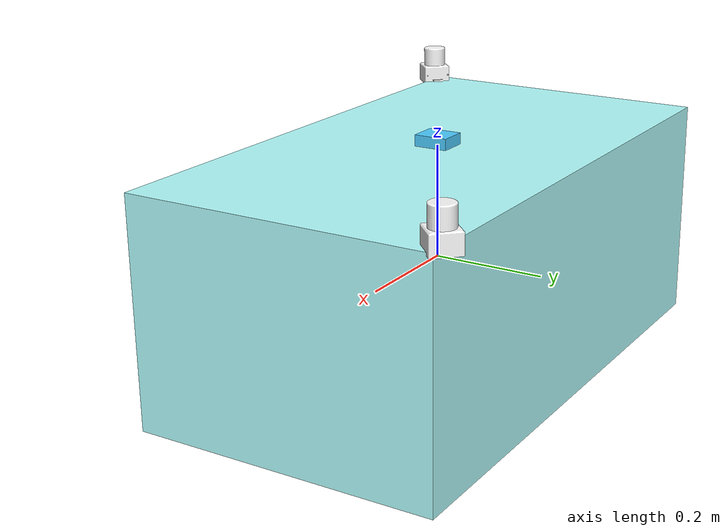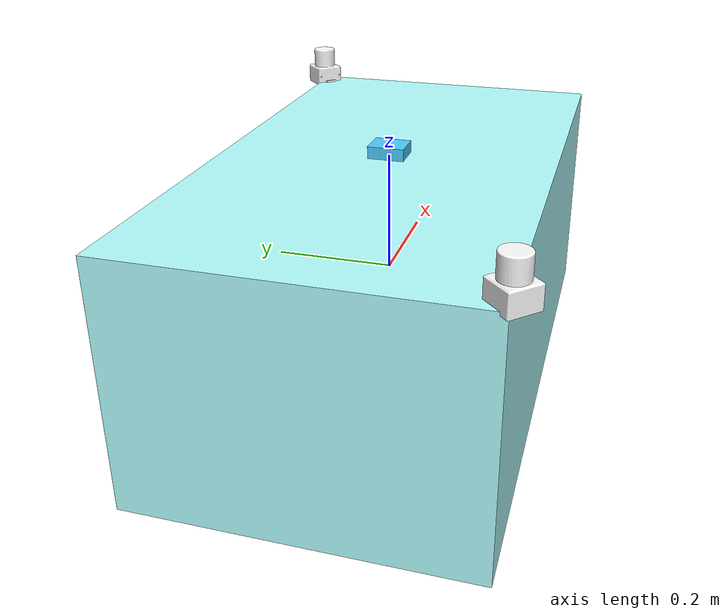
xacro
<?xml version="1.0" encoding="utf-8"?>
<robot xmlns:xacro="http://www.ros.org/wiki/xacro" name="mecbot">
    <xacro:include filename="$(find urg_node)/urdf/hokuyo_ust10.urdf.xacro"/>

    <link name="chassis_base_link">
      <visual>
        <origin xyz="0 0 0" rpy="0 0 0" />
        <geometry>
          <box size="0.95 0.54 0.4"/>
        </geometry>
        <material name="">
          <color rgba="0.7 1 1 1" />
        </material>
      </visual>
    </link>

 <link name="laser1">
    <visual>
      <origin xyz="0 0 0" rpy="0 0 0" />
      <geometry>
        <mesh filename="package://mecbot_description/meshes_simple/laser.STL" />
      </geometry>
      <material name="">
        <color rgba="1 1 1 1" />
      </material>
    </visual>
  </link>

    <joint name="laser1_joint" type="fixed">
	<origin xyz="0.45 0.27 0.23" rpy="0 0 0.785"/>
	<parent link="chassis_base_link"/>
	<child link="laser1"/>
	<axis xyz="0 0 0"/>
    </joint>

 <link name="laser2">
    <visual>
      <origin xyz="0 0 0" rpy="0 0 0" />
      <geometry>
        <mesh filename="package://mecbot_description/meshes_simple/laser.STL" />
      </geometry>
      <material name="">
        <color rgba="1 1 1 1" />
      </material>
    </visual>
  </link>

    <joint name="laser2_joint" type="fixed">
	<origin xyz="-0.45 -0.27 0.23" rpy="0 0 3.925"/>
	<parent link="chassis_base_link"/>
	<child link="laser2"/>
	<axis xyz="0 0 0"/>
    </joint>

 <link name="imu">
    <visual>
      <origin xyz="0 0 0" rpy="0 0 0" />
      <geometry>
        <box size="0.05 0.06 0.02"/>
      </geometry>
      <material name="">
        <color rgba="0.3 0.8 1 1" />
      </material>
    </visual>
  </link>

    <joint name="gyro_joint" type="fixed">
	<origin xyz="0 0 0.21" rpy="0 0 0"/>
	<parent link="chassis_base_link"/>
	<child link="imu"/>
	<axis xyz="0 0 0"/>
    </joint>

</robot>
